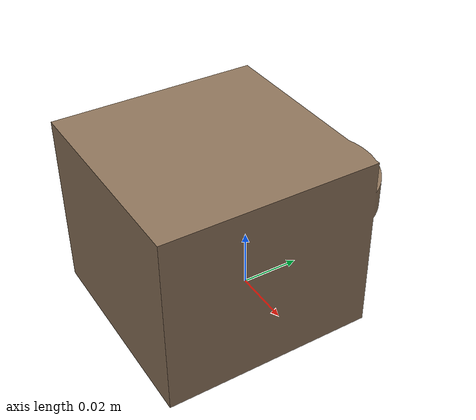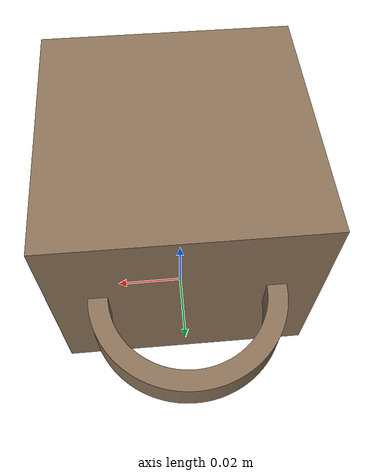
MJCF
<mujoco model="drawer_visual_object">
  <asset>
    <!-- Preprocessed from uploaded Drawer.stl: millimeters -> meters, xy-centered, bottom z=0. -->
    <mesh name="drawer_mesh" file="../meshes/drawer_visual_m.stl"/>
    <material name="drawer_mat" rgba="0.55 0.45 0.35 1" specular="0.25" shininess="0.3"/>
  </asset>

  <worldbody>
    <!-- Required by robosuite MujocoXMLObject: top body contains object body + bottom/top/radius sites. -->
    <body>
      <body name="object">
        <!-- Visual mesh only. Do not use raw CAD mesh for collision. -->
        <geom name="drawer_visual" type="mesh" mesh="drawer_mesh" material="drawer_mat"
              contype="0" conaffinity="0" group="1"/>

        <!-- Bright debug visual proxy. Remove later after confirming placement. -->

        <!-- Simple collision proxy based on uploaded STL bounds: 0.070 x 0.095 x 0.060 m. -->
        <geom name="drawer_collision" type="box" pos="0 0 0.030" size="0.035 0.0475 0.030"
              rgba="0.2 0.2 0.2 0.0" density="80" friction="1.2 0.01 0.001"
              solimp="0.998 0.998 0.001" solref="0.002 1" group="0"/>

        <site name="drawer_center" pos="0 0 0.030" size="0.008" rgba="1 0 0 1"/>
      </body>
      <site name="bottom_site" pos="0 0 0" size="0.005" rgba="0 0 0 0"/>
      <site name="top_site" pos="0 0 0.060" size="0.005" rgba="0 0 0 0"/>
      <site name="horizontal_radius_site" pos="0.060 0.060 0.030" size="0.005" rgba="0 0 0 0"/>
    </body>
  </worldbody>
</mujoco>
